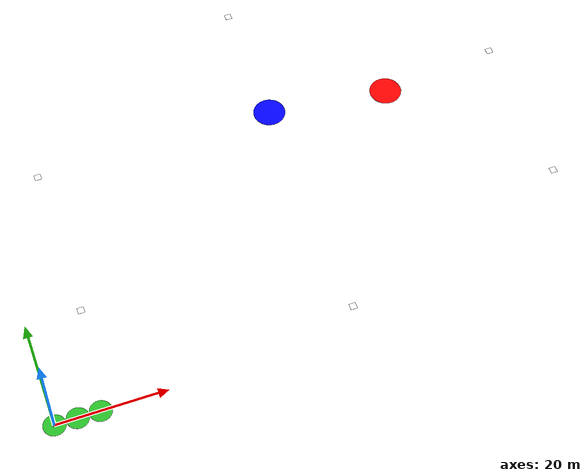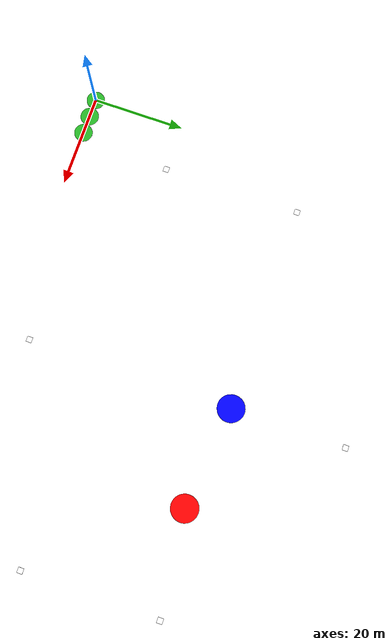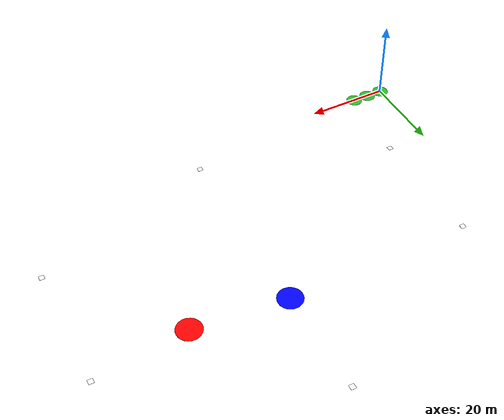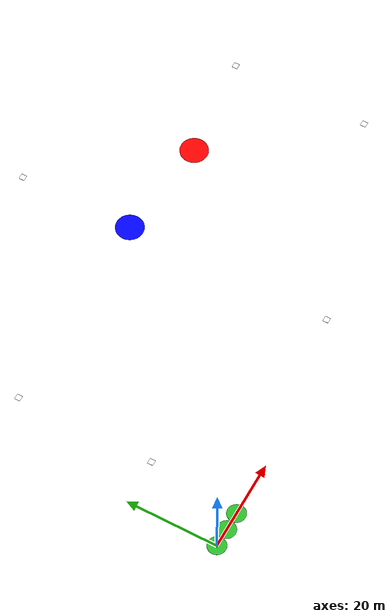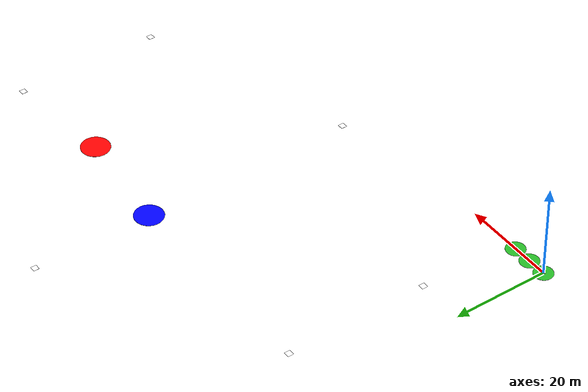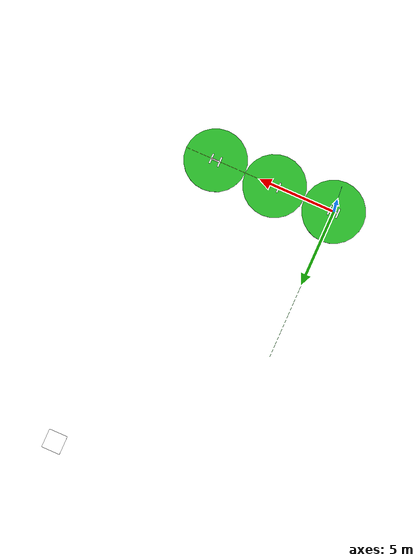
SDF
<sdf version="1.9">
 <world name="iris_runway">
  <physics name="1ms" type="ignore">
   <max_step_size>0.001</max_step_size>
   <real_time_factor>1.0</real_time_factor>
  </physics>
  <plugin filename="gz-sim-physics-system" name="gz::sim::systems::Physics"/>
  <plugin filename="gz-sim-sensors-system" name="gz::sim::systems::Sensors">
   <render_engine>ogre2</render_engine>
  </plugin>
  <plugin filename="gz-sim-user-commands-system" name="gz::sim::systems::UserCommands"/>
  <plugin filename="gz-sim-scene-broadcaster-system" name="gz::sim::systems::SceneBroadcaster"/>
  <plugin filename="gz-sim-imu-system" name="gz::sim::systems::Imu"/>
  <plugin filename="gz-sim-navsat-system" name="gz::sim::systems::NavSat"/>
  <scene><ambient>1.0 1.0 1.0</ambient><background>0.8 0.8 0.8</background></scene>
  <spherical_coordinates>
   <latitude_deg>-35.363262</latitude_deg>
   <longitude_deg>149.165237</longitude_deg>
   <elevation>584</elevation>
   <heading_deg>0</heading_deg>
   <surface_model>EARTH_WGS84</surface_model>
  </spherical_coordinates>
  <light type="directional" name="sun">
   <pose>0 0 10 0 0 0</pose>
   <diffuse>0.8 0.8 0.8 1</diffuse>
   <specular>0.8 0.8 0.8 1</specular>
   <attenuation>
    <range>1000</range>
    <constant>0.9</constant>
    <linear>0.01</linear>
    <quadratic>0.001</quadratic>
   </attenuation>
   <direction>-0.5 0.1 -0.9</direction>
  </light>
  <model name="axes">
   <static>1</static>
   <link name="link">
    <visual name="r">
     <cast_shadows>0</cast_shadows>
     <pose>5 0 0.1 0 0 0</pose>
     <geometry><box><size>10 0.01 0.01</size></box></geometry>
     <material>
      <ambient>1 0 0 0.8</ambient>
      <diffuse>1 0 0 0.8</diffuse>
      <emissive>1 0 0 0.8</emissive>
      <specular>0.5 0.5 0.5 0.8</specular>
     </material>
    </visual>
    <visual name="g">
     <cast_shadows>0</cast_shadows>
     <pose>0 5 0.1 0 0 0</pose>
     <geometry><box><size>0.01 10 0.01</size></box></geometry>
     <material>
      <ambient>0 1 0 0.8</ambient>
      <diffuse>0 1 0 0.8</diffuse>
      <emissive>0 1 0 0.8</emissive>
      <specular>0.5 0.5 0.5 0.8</specular>
     </material>
    </visual>
    <visual name="b">
     <cast_shadows>0</cast_shadows>
     <pose>0 0 5.1 0 0 0</pose>
     <geometry><box><size>0.01 0.01 10</size></box></geometry>
     <material>
      <ambient>0 0 1 0.8</ambient>
      <diffuse>0 0 1 0.8</diffuse>
      <emissive>0 0 1 0.8</emissive>
      <specular>0.5 0.5 0.5 0.8</specular>
     </material>
    </visual>
    <sensor name="navsat_sensor" type="navsat"><always_on>1</always_on><update_rate>1</update_rate></sensor>
   </link>
  </model>
  <include><uri>model://qr_marker_1</uri><name>qr_node_1</name><pose>10 20 0 0 0 0</pose></include>
  <include><uri>model://qr_marker_2</uri><name>qr_node_2</name><pose>10 50 0 0 0 0</pose></include>
  <include><uri>model://qr_marker_3</uri><name>qr_node_3</name><pose>55 75 0 0 0 0</pose></include>
  <include><uri>model://qr_marker_4</uri><name>qr_node_4</name><pose>100 50 0 0 0 0</pose></include>
  <include><uri>model://qr_marker_5</uri><name>qr_node_5</name><pose>100 20 0 0 0 0</pose></include>
  <include><uri>model://qr_marker_6</uri><name>qr_node_6</name><pose>55 5 0 0 0 0</pose></include>
  <include><uri>model://landing_zone_blue</uri><name>landing_blue</name><pose>55 50 0 0 0 0</pose></include>
  <include><uri>model://landing_zone_red</uri><name>landing_red</name><pose>77.5 47.5 0 0 0 0</pose></include>
  <include><uri>model://home_marker</uri><name>home_drone1</name></include>
  <include><uri>model://home_marker</uri><name>home_drone2</name><pose>4 0 0 0 0 0</pose></include>
  <include><uri>model://home_marker</uri><name>home_drone3</name><pose>8 0 0 0 0 0</pose></include>
 </world>
</sdf>

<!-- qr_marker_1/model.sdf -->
<sdf version="1.9">
  <model name="qr_marker_1">
    <static>true</static>

    <!-- QR LEVHA: 1.2x1.2m yatay, zeminde, gerçek QR texture -->
    <link name="panel">
      <visual name="qr_visual">
        <pose>0 0 0.01 0 0 0</pose>
        <geometry>
          <box><size>1.2 1.2 0.02</size></box>
        </geometry>
        <material>
          <ambient>1 1 1 1</ambient>
          <diffuse>1 1 1 1</diffuse>
          <specular>0.0 0.0 0.0 1</specular>
          <pbr>
            <metal>
              <albedo_map>model://qr_marker_1/materials/textures/qr_1.png</albedo_map>
              <metalness>0.0</metalness>
              <roughness>1.0</roughness>
            </metal>
          </pbr>
        </material>
        <cast_shadows>false</cast_shadows>
      </visual>
      <collision name="c">
        <pose>0 0 0.01 0 0 0</pose>
        <geometry><box><size>1.2 1.2 0.02</size></box></geometry>
      </collision>
    </link>

  </model>
</sdf>

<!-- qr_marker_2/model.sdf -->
<sdf version="1.9">
  <model name="qr_marker_2">
    <static>true</static>

    <!-- QR LEVHA: 1.2x1.2m yatay, zeminde, gerçek QR texture -->
    <link name="panel">
      <visual name="qr_visual">
        <pose>0 0 0.01 0 0 0</pose>
        <geometry>
          <box><size>1.2 1.2 0.02</size></box>
        </geometry>
        <material>
          <ambient>1 1 1 1</ambient>
          <diffuse>1 1 1 1</diffuse>
          <specular>0.0 0.0 0.0 1</specular>
          <pbr>
            <metal>
              <albedo_map>model://qr_marker_2/materials/textures/qr_2.png</albedo_map>
              <metalness>0.0</metalness>
              <roughness>1.0</roughness>
            </metal>
          </pbr>
        </material>
        <cast_shadows>false</cast_shadows>
      </visual>
      <collision name="c">
        <pose>0 0 0.01 0 0 0</pose>
        <geometry><box><size>1.2 1.2 0.02</size></box></geometry>
      </collision>
    </link>

  </model>
</sdf>

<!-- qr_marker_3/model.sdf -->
<sdf version="1.9">
  <model name="qr_marker_3">
    <static>true</static>

    <!-- QR LEVHA: 1.2x1.2m yatay, zeminde, gerçek QR texture -->
    <link name="panel">
      <visual name="qr_visual">
        <pose>0 0 0.01 0 0 0</pose>
        <geometry>
          <box><size>1.2 1.2 0.02</size></box>
        </geometry>
        <material>
          <ambient>1 1 1 1</ambient>
          <diffuse>1 1 1 1</diffuse>
          <specular>0.0 0.0 0.0 1</specular>
          <pbr>
            <metal>
              <albedo_map>model://qr_marker_3/materials/textures/qr_3.png</albedo_map>
              <metalness>0.0</metalness>
              <roughness>1.0</roughness>
            </metal>
          </pbr>
        </material>
        <cast_shadows>false</cast_shadows>
      </visual>
      <collision name="c">
        <pose>0 0 0.01 0 0 0</pose>
        <geometry><box><size>1.2 1.2 0.02</size></box></geometry>
      </collision>
    </link>

  </model>
</sdf>

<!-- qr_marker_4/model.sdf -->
<sdf version="1.9">
  <model name="qr_marker_4">
    <static>true</static>

    <!-- QR LEVHA: 1.2x1.2m yatay, zeminde, gerçek QR texture -->
    <link name="panel">
      <visual name="qr_visual">
        <pose>0 0 0.01 0 0 0</pose>
        <geometry>
          <box><size>1.2 1.2 0.02</size></box>
        </geometry>
        <material>
          <ambient>1 1 1 1</ambient>
          <diffuse>1 1 1 1</diffuse>
          <specular>0.0 0.0 0.0 1</specular>
          <pbr>
            <metal>
              <albedo_map>model://qr_marker_4/materials/textures/qr_4.png</albedo_map>
              <metalness>0.0</metalness>
              <roughness>1.0</roughness>
            </metal>
          </pbr>
        </material>
        <cast_shadows>false</cast_shadows>
      </visual>
      <collision name="c">
        <pose>0 0 0.01 0 0 0</pose>
        <geometry><box><size>1.2 1.2 0.02</size></box></geometry>
      </collision>
    </link>

  </model>
</sdf>

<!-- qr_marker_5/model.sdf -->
<sdf version="1.9">
  <model name="qr_marker_5">
    <static>true</static>

    <!-- QR LEVHA: 1.2x1.2m yatay, zeminde, gerçek QR texture -->
    <link name="panel">
      <visual name="qr_visual">
        <pose>0 0 0.01 0 0 0</pose>
        <geometry>
          <box><size>1.2 1.2 0.02</size></box>
        </geometry>
        <material>
          <ambient>1 1 1 1</ambient>
          <diffuse>1 1 1 1</diffuse>
          <specular>0.0 0.0 0.0 1</specular>
          <pbr>
            <metal>
              <albedo_map>model://qr_marker_5/materials/textures/qr_5.png</albedo_map>
              <metalness>0.0</metalness>
              <roughness>1.0</roughness>
            </metal>
          </pbr>
        </material>
        <cast_shadows>false</cast_shadows>
      </visual>
      <collision name="c">
        <pose>0 0 0.01 0 0 0</pose>
        <geometry><box><size>1.2 1.2 0.02</size></box></geometry>
      </collision>
    </link>

  </model>
</sdf>

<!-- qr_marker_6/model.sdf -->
<sdf version="1.9">
  <model name="qr_marker_6">
    <static>true</static>

    <!-- QR LEVHA: 1.2x1.2m yatay, zeminde, gerçek QR texture -->
    <link name="panel">
      <visual name="qr_visual">
        <pose>0 0 0.01 0 0 0</pose>
        <geometry>
          <box><size>1.2 1.2 0.02</size></box>
        </geometry>
        <material>
          <ambient>1 1 1 1</ambient>
          <diffuse>1 1 1 1</diffuse>
          <specular>0.0 0.0 0.0 1</specular>
          <pbr>
            <metal>
              <albedo_map>model://qr_marker_6/materials/textures/qr_6.png</albedo_map>
              <metalness>0.0</metalness>
              <roughness>1.0</roughness>
            </metal>
          </pbr>
        </material>
        <cast_shadows>false</cast_shadows>
      </visual>
      <collision name="c">
        <pose>0 0 0.01 0 0 0</pose>
        <geometry><box><size>1.2 1.2 0.02</size></box></geometry>
      </collision>
    </link>

  </model>
</sdf>

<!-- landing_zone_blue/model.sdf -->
<sdf version="1.9">
  <model name="landing_zone_blue">
    <static>true</static>
    <link name="link">
      <visual name="disc">
        <pose>0 0 0.01 0 0 0</pose>
        <geometry><cylinder><radius>3.0</radius><length>0.02</length></cylinder></geometry>
        <material>
          <ambient>0.0 0.0 1.0 1</ambient>
          <diffuse>0.0 0.0 1.0 1</diffuse>
          <emissive>0.0 0.0 0.0 1</emissive>
          <specular>0.0 0.0 0.0 1</specular>
        </material>
        <cast_shadows>false</cast_shadows>
      </visual>
      <collision name="c">
        <pose>0 0 0.01 0 0 0</pose>
        <geometry><cylinder><radius>3.0</radius><length>0.02</length></cylinder></geometry>
      </collision>
    </link>
  </model>
</sdf>

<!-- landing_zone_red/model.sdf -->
<sdf version="1.9">
  <model name="landing_zone_red">
    <static>true</static>
    <link name="link">
      <visual name="disc">
        <pose>0 0 0.01 0 0 0</pose>
        <geometry><cylinder><radius>3.0</radius><length>0.02</length></cylinder></geometry>
        <material>
          <ambient>1.0 0.0 0.0 1</ambient>
          <diffuse>1.0 0.0 0.0 1</diffuse>
          <emissive>0.0 0.0 0.0 1</emissive>
          <specular>0.0 0.0 0.0 1</specular>
        </material>
        <cast_shadows>false</cast_shadows>
      </visual>
      <collision name="c">
        <pose>0 0 0.01 0 0 0</pose>
        <geometry><cylinder><radius>3.0</radius><length>0.02</length></cylinder></geometry>
      </collision>
    </link>
  </model>
</sdf>

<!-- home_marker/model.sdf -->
<sdf version="1.9">
  <model name="home_marker">
    <static>true</static>
    <link name="link">

      <!-- Yeşil daire zemin (r=2m) -->
      <visual name="disc">
        <pose>0 0 0.01 0 0 0</pose>
        <geometry><cylinder><radius>2.0</radius><length>0.02</length></cylinder></geometry>
        <material>
          <ambient>0.15 0.72 0.15 1</ambient>
          <diffuse>0.15 0.72 0.15 1</diffuse>
          <emissive>0.0 0.0 0.0 1</emissive>
          <specular>0.0 0.0 0.0 1</specular>
        </material>
        <cast_shadows>false</cast_shadows>
      </visual>

      <!-- H - sol ayak (Y yonunde uzaniyor, zemine basik) -->
      <visual name="h_left">
        <pose>-0.28 0 0.02 0 0 0</pose>
        <geometry><box><size>0.10 0.65 0.02</size></box></geometry>
        <material>
          <ambient>0.95 0.95 0.95 1</ambient>
          <diffuse>0.95 0.95 0.95 1</diffuse>
          <emissive>0.5 0.5 0.5 1</emissive>
        </material>
        <cast_shadows>false</cast_shadows>
      </visual>

      <!-- H - sag ayak (Y yonunde uzaniyor, zemine basik) -->
      <visual name="h_right">
        <pose>0.28 0 0.02 0 0 0</pose>
        <geometry><box><size>0.10 0.65 0.02</size></box></geometry>
        <material>
          <ambient>0.95 0.95 0.95 1</ambient>
          <diffuse>0.95 0.95 0.95 1</diffuse>
          <emissive>0.5 0.5 0.5 1</emissive>
        </material>
        <cast_shadows>false</cast_shadows>
      </visual>

      <!-- H - orta kopru (X yonunde uzaniyor, zemine basik) -->
      <visual name="h_mid">
        <pose>0 0 0.02 0 0 0</pose>
        <geometry><box><size>0.56 0.10 0.02</size></box></geometry>
        <material>
          <ambient>0.95 0.95 0.95 1</ambient>
          <diffuse>0.95 0.95 0.95 1</diffuse>
          <emissive>0.5 0.5 0.5 1</emissive>
        </material>
        <cast_shadows>false</cast_shadows>
      </visual>

      <collision name="c">
        <pose>0 0 0.01 0 0 0</pose>
        <geometry><cylinder><radius>2.0</radius><length>0.02</length></cylinder></geometry>
      </collision>
    </link>
  </model>
</sdf>
